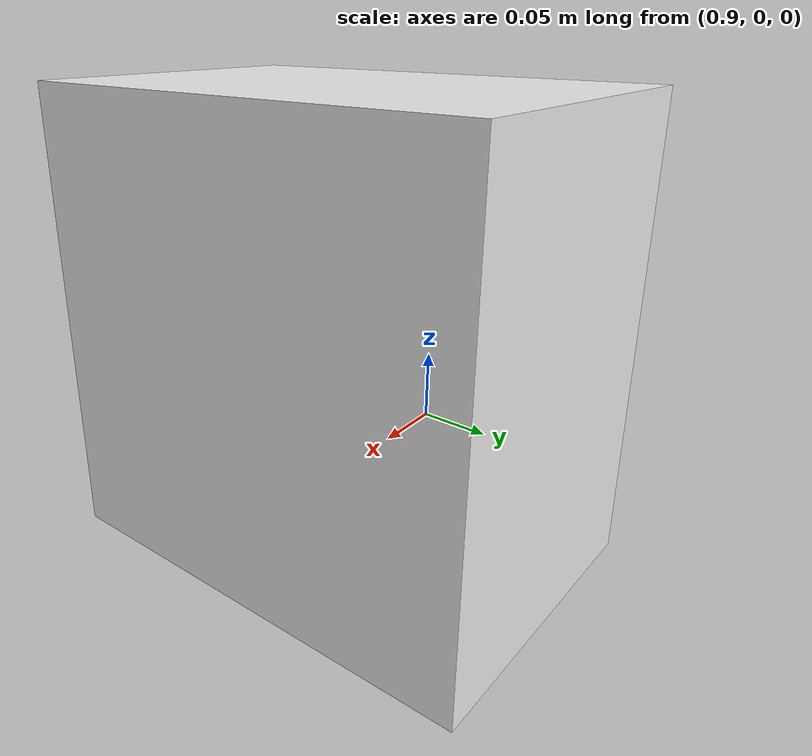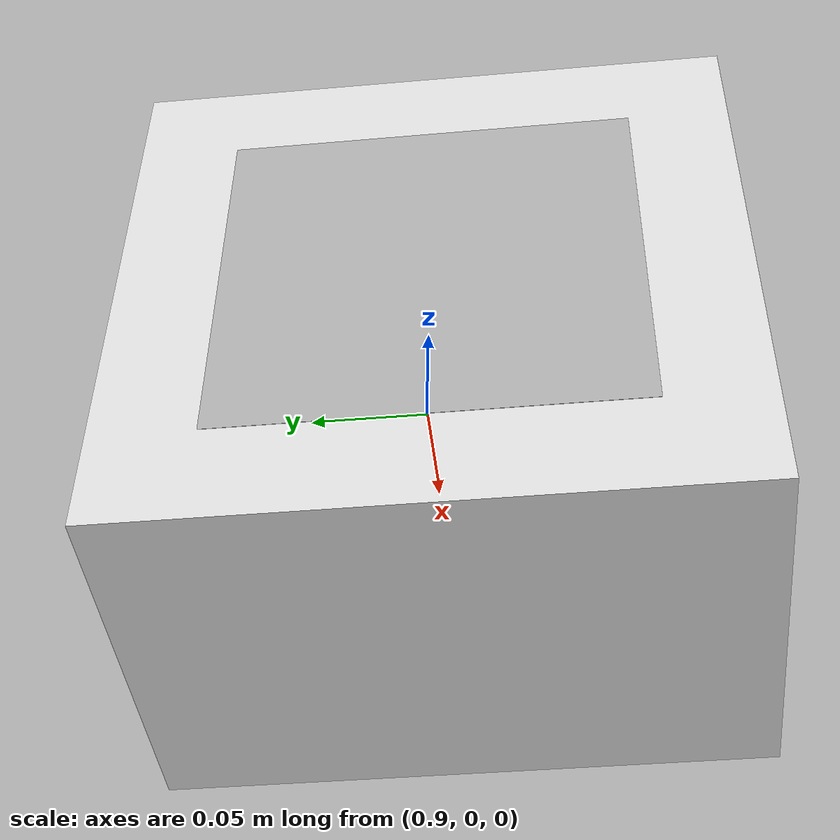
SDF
<?xml version="1.0"?>
<sdf version="1.6">
  <model name="qr_cube_model">
    <static>true</static>

    <!-- Create a cube -->

    <link name="cube_link">
      <visual name="cube_visual">
        <geometry>
          <box>
            <size>0.2 0.3 0.3</size>
          </box>
        </geometry>
        <material>
          <script>
            <uri>file://media/materials/scripts/gazebo.material</uri>
            <name>Gazebo/White</name>
          </script>
        </material>
        <pose>1 0 0.1 0 0 0</pose>
      </visual>
      <collision name="cube_collision">
        <geometry>
          <box>
            <size>0.2 0.3 0.3</size>
          </box>
        </geometry>
        <pose>1 0 0 0 0 0</pose>
      </collision>
      <inertial>
        <mass>1.0</mass>
        <inertia>
          <ixx>0.083</ixx>
          <iyy>0.083</iyy>
          <izz>0.083</izz>
          <ixy>0</ixy>
          <ixz>0</ixz>
          <iyz>0</iyz>
        </inertia>
      </inertial>
    </link>

    <!-- Create a plane with QR code material -->
    <link name="plane_link">
      <visual name="plane_visual">
        <geometry>
          <plane>
            <normal>0 0 1</normal>
            <size>0.2 0.2</size>
          </plane>
        </geometry>
        <material>
          <script>
            <uri>file://media/materials/scripts/qr_material.material</uri>
            <name>Gazebo/QRCode</name>
          </script>
        </material>
        <pose>0.899 0 0.1 0 1.57 3.14</pose>
      </visual>
      <collision name="plane_collision">
        <geometry>
          <plane>
            <normal>0 0 1</normal>
            <size>0.2 0.2</size>
          </plane>
        </geometry>
        <pose>0.899 0 0.1 0 1.57 3.14</pose>
      </collision>
      <inertial>
        <mass>0</mass>
      </inertial>
    </link>

    <!-- Create a fixed joint between the cube and the plane -->
    <joint name="fixed_joint" type="fixed">
      <parent>cube_link</parent>
      <child>plane_link</child>
      <pose>0.899 0 0.1 0 1.57 3.14</pose>
    </joint>

  </model>
</sdf>
